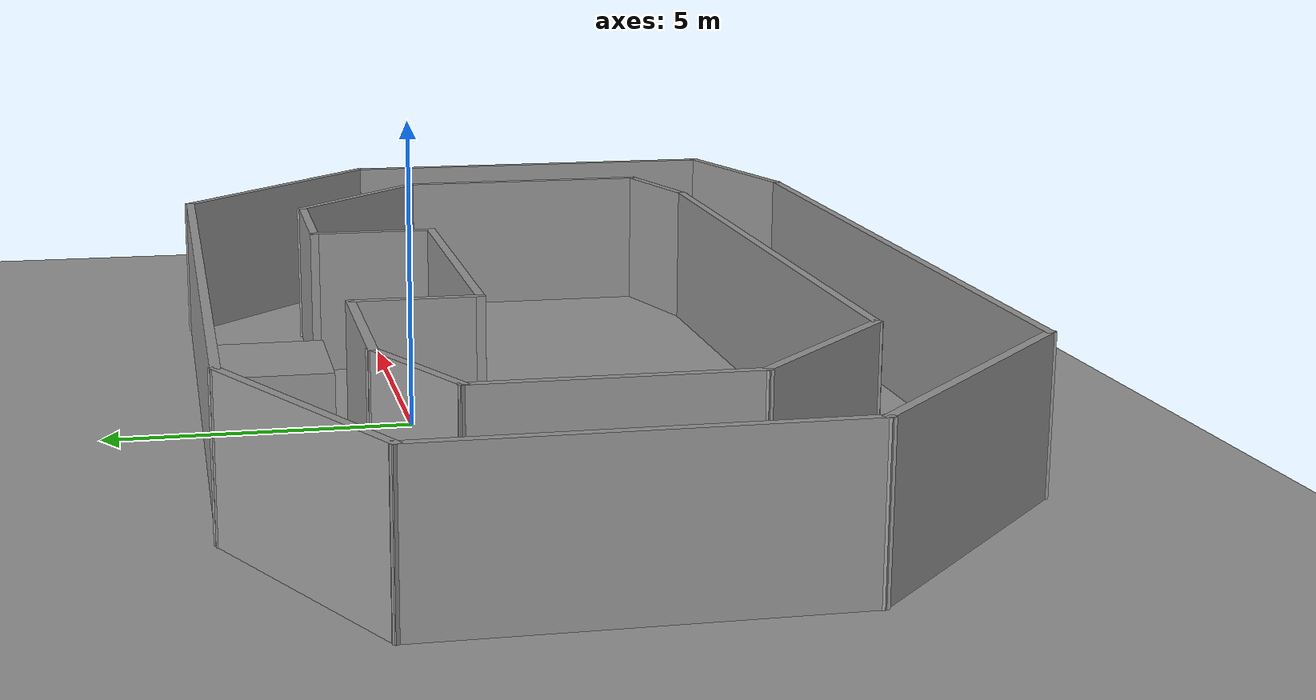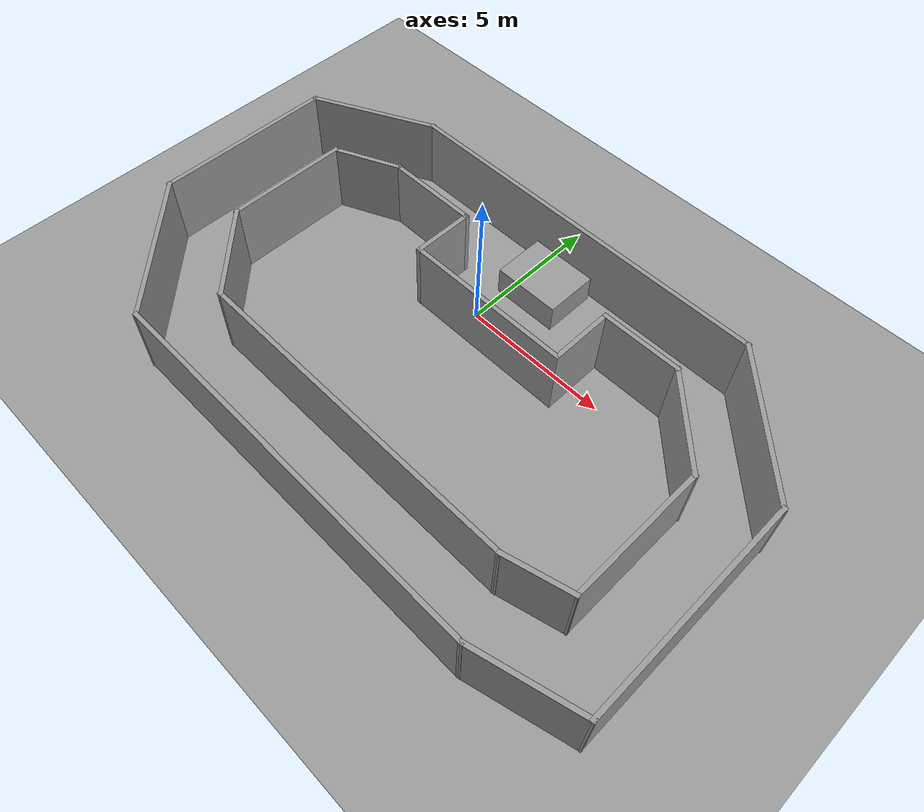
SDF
<sdf version="1.6">
 <world name="default">
  <light name="sun" type="directional">
   <pose>0 0 10 0 -0 0</pose>
   <diffuse>0.8 0.8 0.8 1</diffuse>
   <specular>0.2 0.2 0.2 1</specular>
   <attenuation>
    <range>1000</range>
    <constant>0.9</constant>
    <linear>0.01</linear>
    <quadratic>0.001</quadratic>
   </attenuation>
   <direction>0.5 0.1 -0.9</direction>
  </light>
  <scene><ambient>0.4 0.4 0.4 1</ambient><background>0.7 0.7 0.7 1</background><shadows>1</shadows></scene>
  <physics name="default_physics" default="0" type="ode">
   <max_step_size>0.01</max_step_size>
   <real_time_factor>1</real_time_factor>
   <real_time_update_rate>100</real_time_update_rate>
  </physics>
  <model name="ground_plane_0">
   <static>1</static>
   <link name="link">
    <collision name="collision">
     <geometry><plane><normal>0 0 1</normal><size>100 100</size></plane></geometry>
     <surface><friction><ode><mu>100</mu><mu2>50</mu2></ode></friction></surface>
    </collision>
    <visual name="visual">
     <cast_shadows>0</cast_shadows>
     <geometry><plane><normal>0 0 1</normal><size>100 100</size></plane></geometry>
     <material>
      <script><uri>file://media/materials/scripts/gazebo.material</uri><name>Gazebo/Grey</name></script>
     </material>
    </visual>
    <velocity_decay><linear>0</linear><angular>0</angular></velocity_decay>
   </link>
   <pose>0.497681 0 0 0 -0 0</pose>
  </model>
  <gravity>0 0 -9.8</gravity>
  <magnetic_field>6e-06 2.3e-05 -4.2e-05</magnetic_field>
  <atmosphere type="adiabatic"/>
  <spherical_coordinates>
   <surface_model>EARTH_WGS84</surface_model>
   <latitude_deg>0</latitude_deg>
   <longitude_deg>0</longitude_deg>
   <elevation>0</elevation>
   <heading_deg>0</heading_deg>
  </spherical_coordinates>
  <model name="tracknoob">
   <pose>0.825423 -2.60691 0 0 -0 0</pose>
   <link name="Wall_0">
    <collision name="Wall_0_Collision">
     <geometry><box><size>13 0.15 2.5</size></box></geometry>
     <pose>0 0 1.25 0 -0 0</pose>
    </collision>
    <visual name="Wall_0_Visual">
     <pose>0 0 1.25 0 -0 0</pose>
     <geometry><box><size>13 0.15 2.5</size></box></geometry>
     <material>
      <script><uri>file://media/materials/scripts/gazebo.material</uri><name>Gazebo/Grey</name></script>
      <ambient>1 1 1 1</ambient>
     </material>
    </visual>
    <pose>0.153192 5.91164 0 0 -0 0</pose>
   </link>
   <link name="Wall_1">
    <collision name="Wall_1_Collision">
     <geometry><box><size>5.25 0.15 2.5</size></box></geometry>
     <pose>0 0 1.25 0 -0 0</pose>
    </collision>
    <visual name="Wall_1_Visual">
     <pose>0 0 1.25 0 -0 0</pose>
     <geometry><box><size>5.25 0.15 2.5</size></box></geometry>
     <material>
      <script><uri>file://media/materials/scripts/gazebo.material</uri><name>Gazebo/Grey</name></script>
      <ambient>1 1 1 1</ambient>
     </material>
    </visual>
    <pose>8.38132 4.10852 0 0 0 -0.785398</pose>
   </link>
   <link name="Wall_10">
    <collision name="Wall_10_Collision">
     <geometry><box><size>4.25 0.15 2.5</size></box></geometry>
     <pose>0 0 1.25 0 -0 0</pose>
    </collision>
    <visual name="Wall_10_Visual">
     <pose>0 0 1.25 0 -0 0</pose>
     <geometry><box><size>4.25 0.15 2.5</size></box></geometry>
     <material>
      <script><uri>file://media/materials/scripts/gazebo.material</uri><name>Gazebo/Grey</name></script>
      <ambient>1 1 1 1</ambient>
     </material>
    </visual>
    <pose>-7.69279 0.731509 0 0 0 -1.5708</pose>
   </link>
   <link name="Wall_11">
    <collision name="Wall_11_Collision">
     <geometry><box><size>3.5 0.15 2.5</size></box></geometry>
     <pose>0 0 1.25 0 -0 0</pose>
    </collision>
    <visual name="Wall_11_Visual">
     <pose>0 0 1.25 0 -0 0</pose>
     <geometry><box><size>3.5 0.15 2.5</size></box></geometry>
     <material>
      <script><uri>file://media/materials/scripts/gazebo.material</uri><name>Gazebo/Grey</name></script>
      <ambient>1 1 1 1</ambient>
     </material>
    </visual>
    <pose>-6.50838 -2.5029 0 0 0 -0.785398</pose>
   </link>
   <link name="Wall_12">
    <collision name="Wall_12_Collision">
     <geometry><box><size>11.5 0.15 2.5</size></box></geometry>
     <pose>0 0 1.25 0 -0 0</pose>
    </collision>
    <visual name="Wall_12_Visual">
     <pose>0 0 1.25 0 -0 0</pose>
     <geometry><box><size>11.5 0.15 2.5</size></box></geometry>
     <material>
      <script><uri>file://media/materials/scripts/gazebo.material</uri><name>Gazebo/Grey</name></script>
      <ambient>1 1 1 1</ambient>
     </material>
    </visual>
    <pose>0.35102 -3.6873 0 0 -0 0</pose>
   </link>
   <link name="Wall_13">
    <collision name="Wall_13_Collision">
     <geometry><box><size>2.25 0.15 2.5</size></box></geometry>
     <pose>0 0 1.25 0 -0 0</pose>
    </collision>
    <visual name="Wall_13_Visual">
     <pose>0 0 1.25 0 -0 0</pose>
     <geometry><box><size>2.25 0.15 2.5</size></box></geometry>
     <material>
      <script><uri>file://media/materials/scripts/gazebo.material</uri><name>Gazebo/Grey</name></script>
      <ambient>1 1 1 1</ambient>
     </material>
    </visual>
    <pose>7.04024 -3.41554 0 0 -0 0.261799</pose>
   </link>
   <link name="Wall_14">
    <collision name="Wall_14_Collision">
     <geometry><box><size>4.75 0.15 2.5</size></box></geometry>
     <pose>0 0 1.25 0 -0 0</pose>
    </collision>
    <visual name="Wall_14_Visual">
     <pose>0 0 1.25 0 -0 0</pose>
     <geometry><box><size>4.75 0.15 2.5</size></box></geometry>
     <material>
      <script><uri>file://media/materials/scripts/gazebo.material</uri><name>Gazebo/Grey</name></script>
      <ambient>1 1 1 1</ambient>
     </material>
    </visual>
    <pose>8.05446 -0.843779 0 0 -0 1.5708</pose>
   </link>
   <link name="Wall_15">
    <collision name="Wall_15_Collision">
     <geometry><box><size>3.5 0.15 2.5</size></box></geometry>
     <pose>0 0 1.25 0 -0 0</pose>
    </collision>
    <visual name="Wall_15_Visual">
     <pose>0 0 1.25 0 -0 0</pose>
     <geometry><box><size>3.5 0.15 2.5</size></box></geometry>
     <material>
      <script><uri>file://media/materials/scripts/gazebo.material</uri><name>Gazebo/Grey</name></script>
      <ambient>1 1 1 1</ambient>
     </material>
    </visual>
    <pose>6.87006 2.64062 0 0 -0 2.35619</pose>
   </link>
   <link name="Wall_16">
    <collision name="Wall_16_Collision">
     <geometry><box><size>2.75 0.15 2.5</size></box></geometry>
     <pose>0 0 1.25 0 -0 0</pose>
    </collision>
    <visual name="Wall_16_Visual">
     <pose>0 0 1.25 0 -0 0</pose>
     <geometry><box><size>2.75 0.15 2.5</size></box></geometry>
     <material>
      <script><uri>file://media/materials/scripts/gazebo.material</uri><name>Gazebo/Grey</name></script>
      <ambient>1 1 1 1</ambient>
     </material>
    </visual>
    <pose>4.38566 3.82503 0 0 -0 3.14159</pose>
   </link>
   <link name="Wall_17">
    <collision name="Wall_17_Collision">
     <geometry><box><size>2.25 0.15 2.5</size></box></geometry>
     <pose>0 0 1.25 0 -0 0</pose>
    </collision>
    <visual name="Wall_17_Visual">
     <pose>0 0 1.25 0 -0 0</pose>
     <geometry><box><size>2.25 0.15 2.5</size></box></geometry>
     <material>
      <script><uri>file://media/materials/scripts/gazebo.material</uri><name>Gazebo/Grey</name></script>
      <ambient>1 1 1 1</ambient>
     </material>
    </visual>
    <pose>3.08566 2.77503 0 0 0 -1.5708</pose>
   </link>
   <link name="Wall_18">
    <collision name="Wall_18_Collision">
     <geometry><box><size>5.75 0.15 2.5</size></box></geometry>
     <pose>0 0 1.25 0 -0 0</pose>
    </collision>
    <visual name="Wall_18_Visual">
     <pose>0 0 1.25 0 -0 0</pose>
     <geometry><box><size>5.75 0.15 2.5</size></box></geometry>
     <material>
      <script><uri>file://media/materials/scripts/gazebo.material</uri><name>Gazebo/Grey</name></script>
      <ambient>1 1 1 1</ambient>
     </material>
    </visual>
    <pose>0.285656 1.72503 0 0 -0 3.14159</pose>
   </link>
   <link name="Wall_19">
    <collision name="Wall_19_Collision">
     <geometry><box><size>2.12236 0.15 2.5</size></box></geometry>
     <pose>0 0 1.25 0 -0 0</pose>
    </collision>
    <visual name="Wall_19_Visual">
     <pose>0 0 1.25 0 -0 0</pose>
     <geometry><box><size>2.12236 0.15 2.5</size></box></geometry>
     <material>
      <script><uri>file://media/materials/scripts/gazebo.material</uri><name>Gazebo/Grey</name></script>
      <ambient>1 1 1 1</ambient>
     </material>
    </visual>
    <pose>-2.51434 2.71121 0 0 -0 1.5708</pose>
   </link>
   <link name="Wall_2">
    <collision name="Wall_2_Collision">
     <geometry><box><size>7.5 0.15 2.5</size></box></geometry>
     <pose>0 0 1.25 0 -0 0</pose>
    </collision>
    <visual name="Wall_2_Visual">
     <pose>0 0 1.25 0 -0 0</pose>
     <geometry><box><size>7.5 0.15 2.5</size></box></geometry>
     <material>
      <script><uri>file://media/materials/scripts/gazebo.material</uri><name>Gazebo/Grey</name></script>
      <ambient>1 1 1 1</ambient>
     </material>
    </visual>
    <pose>10.1844 -1.3696 0 0 0 -1.5708</pose>
   </link>
   <link name="Wall_20">
    <collision name="Wall_20_Collision">
     <geometry><box><size>3.25 0.15 2.5</size></box></geometry>
     <pose>0 0 1.25 0 -0 0</pose>
    </collision>
    <visual name="Wall_20_Visual">
     <pose>0 0 1.25 0 -0 0</pose>
     <geometry><box><size>3.25 0.15 2.5</size></box></geometry>
     <material>
      <script><uri>file://media/materials/scripts/gazebo.material</uri><name>Gazebo/Grey</name></script>
      <ambient>1 1 1 1</ambient>
     </material>
    </visual>
    <pose>-4.06434 3.72798 0 0 -0 3.14159</pose>
   </link>
   <link name="Wall_3">
    <collision name="Wall_3_Collision">
     <geometry><box><size>3.5 0.15 2.5</size></box></geometry>
     <pose>0 0 1.25 0 -0 0</pose>
    </collision>
    <visual name="Wall_3_Visual">
     <pose>0 0 1.25 0 -0 0</pose>
     <geometry><box><size>3.5 0.15 2.5</size></box></geometry>
     <material>
      <script><uri>file://media/materials/scripts/gazebo.material</uri><name>Gazebo/Grey</name></script>
      <ambient>1 1 1 1</ambient>
     </material>
    </visual>
    <pose>8.56651 -5.47812 0 0 0 -2.87979</pose>
   </link>
   <link name="Wall_4">
    <collision name="Wall_4_Collision">
     <geometry><box><size>13.5 0.15 2.5</size></box></geometry>
     <pose>0 0 1.25 0 -0 0</pose>
    </collision>
    <visual name="Wall_4_Visual">
     <pose>0 0 1.25 0 -0 0</pose>
     <geometry><box><size>13.5 0.15 2.5</size></box></geometry>
     <material>
      <script><uri>file://media/materials/scripts/gazebo.material</uri><name>Gazebo/Grey</name></script>
      <ambient>1 1 1 1</ambient>
     </material>
    </visual>
    <pose>0.273585 -5.91164 0 0 -0 3.14159</pose>
   </link>
   <link name="Wall_5">
    <collision name="Wall_5_Collision">
     <geometry><box><size>5.5 0.15 2.5</size></box></geometry>
     <pose>0 0 1.25 0 -0 0</pose>
    </collision>
    <visual name="Wall_5_Visual">
     <pose>0 0 1.25 0 -0 0</pose>
     <geometry><box><size>5.5 0.15 2.5</size></box></geometry>
     <material>
      <script><uri>file://media/materials/scripts/gazebo.material</uri><name>Gazebo/Grey</name></script>
      <ambient>1 1 1 1</ambient>
     </material>
    </visual>
    <pose>-8.29293 -4.02013 0 0 -0 2.35619</pose>
   </link>
   <link name="Wall_6">
    <collision name="Wall_6_Collision">
     <geometry><box><size>6.25 0.15 2.5</size></box></geometry>
     <pose>0 0 1.25 0 -0 0</pose>
    </collision>
    <visual name="Wall_6_Visual">
     <pose>0 0 1.25 0 -0 0</pose>
     <geometry><box><size>6.25 0.15 2.5</size></box></geometry>
     <material>
      <script><uri>file://media/materials/scripts/gazebo.material</uri><name>Gazebo/Grey</name></script>
      <ambient>1 1 1 1</ambient>
     </material>
    </visual>
    <pose>-10.1844 0.921377 0 0 -0 1.5708</pose>
   </link>
   <link name="Wall_7">
    <collision name="Wall_7_Collision">
     <geometry><box><size>4.5173 0.15 2.5</size></box></geometry>
     <pose>0 0 1.25 0 -0 0</pose>
    </collision>
    <visual name="Wall_7_Visual">
     <pose>0 0 1.25 0 -0 0</pose>
     <geometry><box><size>4.5173 0.15 2.5</size></box></geometry>
     <material>
      <script><uri>file://media/materials/scripts/gazebo.material</uri><name>Gazebo/Grey</name></script>
      <ambient>1 1 1 1</ambient>
     </material>
    </visual>
    <pose>-8.22812 4.94151 0 0 -0 0.460361</pose>
   </link>
   <link name="Wall_9">
    <collision name="Wall_9_Collision">
     <geometry><box><size>2.4338 0.15 2.5</size></box></geometry>
     <pose>0 0 1.25 0 -0 0</pose>
    </collision>
    <visual name="Wall_9_Visual">
     <pose>0 0 1.25 0 -0 0</pose>
     <geometry><box><size>2.4338 0.15 2.5</size></box></geometry>
     <material>
      <script><uri>file://media/materials/scripts/gazebo.material</uri><name>Gazebo/Grey</name></script>
      <ambient>1 1 1 1</ambient>
     </material>
    </visual>
    <pose>-6.65357 3.25474 0 0 0 -2.71428</pose>
   </link>
   <static>1</static>
  </model>
  <model name="unit_box_0_0">
   <pose>0.887616 2.1665 0.498389 -0.001779 -0 9.3e-05</pose>
   <link name="link">
    <inertial>
     <mass>1</mass>
     <inertia>
      <ixx>0.166667</ixx>
      <ixy>0</ixy>
      <ixz>0</ixz>
      <iyy>0.166667</iyy>
      <iyz>0</iyz>
      <izz>0.166667</izz>
     </inertia>
    </inertial>
    <collision name="collision"><geometry><box><size>2.27756 1.81367 1</size></box></geometry></collision>
    <visual name="visual">
     <geometry><box><size>2.27756 1.81367 1</size></box></geometry>
     <material>
      <script><name>Gazebo/Grey</name><uri>file://media/materials/scripts/gazebo.material</uri></script>
     </material>
    </visual>
   </link>
  </model>
 </world>
</sdf>
